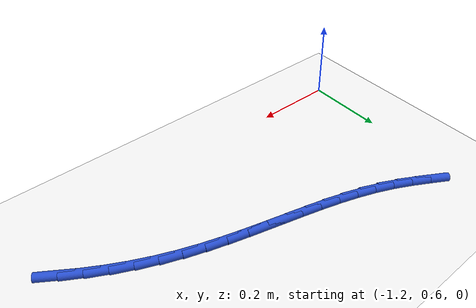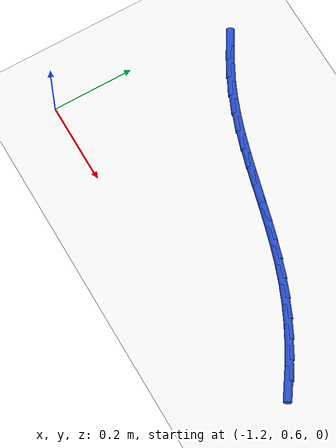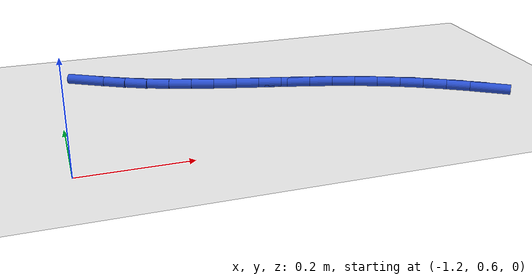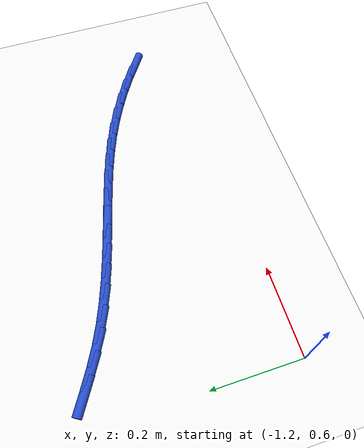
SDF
<sdf version="1.6">
 <world name="default">
  <model name="ground_plane">
   <static>1</static>
   <link name="link">
    <collision name="collision">
     <geometry><plane><normal>0 0 1</normal><size>100 100</size></plane></geometry>
     <surface><friction><ode><mu>100</mu><mu2>50</mu2></ode></friction></surface>
    </collision>
    <visual name="visual">
     <cast_shadows>0</cast_shadows>
     <geometry><plane><normal>0 0 1</normal><size>100 100</size></plane></geometry>
     <material>
      <script><uri>file://media/materials/scripts/gazebo.material</uri><name>Gazebo/WhiteGlow</name></script>
     </material>
    </visual>
   </link>
  </model>
  <model name="line">
   <link name="link_18">
    <pose>-0.3637825632814248 0.7197412563384763 0.01 0 1.57 -0.5878884042394592</pose>
    <collision name="collision">
     <geometry><cylinder><radius>0.01</radius><length>0.08</length></cylinder></geometry>
    </collision>
    <visual name="visual">
     <material>
      <script><name>Gazebo/Blue</name><uri>file://media/materials/scripts/gazebo.material</uri></script>
     </material>
     <geometry><cylinder><radius>0.01</radius><length>0.08</length></cylinder></geometry>
    </visual>
   </link>
   <link name="link_19">
    <pose>-0.40338037573294766 0.7461332666304686 0.01 0 1.57 -0.5402881001267775</pose>
    <collision name="collision">
     <geometry><cylinder><radius>0.01</radius><length>0.08</length></cylinder></geometry>
    </collision>
    <visual name="visual">
     <material>
      <script><name>Gazebo/Blue</name><uri>file://media/materials/scripts/gazebo.material</uri></script>
     </material>
     <geometry><cylinder><radius>0.01</radius><length>0.08</length></cylinder></geometry>
    </visual>
   </link>
   <link name="link_20">
    <pose>-0.44417278772213636 0.7706014246234509 0.01 0 1.57 -0.49308654905106925</pose>
    <collision name="collision">
     <geometry><cylinder><radius>0.01</radius><length>0.08</length></cylinder></geometry>
    </collision>
    <visual name="visual">
     <material>
      <script><name>Gazebo/Blue</name><uri>file://media/materials/scripts/gazebo.material</uri></script>
     </material>
     <geometry><cylinder><radius>0.01</radius><length>0.08</length></cylinder></geometry>
    </visual>
   </link>
   <link name="link_21">
    <pose>-0.48600832528564897 0.7930821430858844 0.01 0 1.57 -0.4460093365763574</pose>
    <collision name="collision">
     <geometry><cylinder><radius>0.01</radius><length>0.08</length></cylinder></geometry>
    </collision>
    <visual name="visual">
     <material>
      <script><name>Gazebo/Blue</name><uri>file://media/materials/scripts/gazebo.material</uri></script>
     </material>
     <geometry><cylinder><radius>0.01</radius><length>0.08</length></cylinder></geometry>
    </visual>
   </link>
   <link name="link_22">
    <pose>-0.5287355144601427 0.8135118347862293 0.01 0 1.57 -0.3987770134314286</pose>
    <collision name="collision">
     <geometry><cylinder><radius>0.01</radius><length>0.08</length></cylinder></geometry>
    </collision>
    <visual name="visual">
     <material>
      <script><name>Gazebo/Blue</name><uri>file://media/materials/scripts/gazebo.material</uri></script>
     </material>
     <geometry><cylinder><radius>0.01</radius><length>0.08</length></cylinder></geometry>
    </visual>
   </link>
   <link name="link_23">
    <pose>-0.5722028812822753 0.8318269124929463 0.01 0 1.57 -0.3520083419137546</pose>
    <collision name="collision">
     <geometry><cylinder><radius>0.01</radius><length>0.08</length></cylinder></geometry>
    </collision>
    <visual name="visual">
     <material>
      <script><name>Gazebo/Blue</name><uri>file://media/materials/scripts/gazebo.material</uri></script>
     </material>
     <geometry><cylinder><radius>0.01</radius><length>0.08</length></cylinder></geometry>
    </visual>
   </link>
   <link name="link_24">
    <pose>-0.6162590524155134 0.8480090134506546 0.01 0 1.57 -0.3121959310141476</pose>
    <collision name="collision">
     <geometry><cylinder><radius>0.01</radius><length>0.08</length></cylinder></geometry>
    </collision>
    <visual name="visual">
     <material>
      <script><name>Gazebo/Blue</name><uri>file://media/materials/scripts/gazebo.material</uri></script>
     </material>
     <geometry><cylinder><radius>0.01</radius><length>0.08</length></cylinder></geometry>
    </visual>
   </link>
   <link name="link_25">
    <pose>-0.6607533883594837 0.8623695812081973 0.01 0 1.57 -0.2824582008621954</pose>
    <collision name="collision">
     <geometry><cylinder><radius>0.01</radius><length>0.08</length></cylinder></geometry>
    </collision>
    <visual name="visual">
     <material>
      <script><name>Gazebo/Blue</name><uri>file://media/materials/scripts/gazebo.material</uri></script>
     </material>
     <geometry><cylinder><radius>0.01</radius><length>0.08</length></cylinder></geometry>
    </visual>
   </link>
   <link name="link_26">
    <pose>-0.7055355747027765 0.8753661633025024 0.01 0 1.57 -0.2629329850610255</pose>
    <collision name="collision">
     <geometry><cylinder><radius>0.01</radius><length>0.08</length></cylinder></geometry>
    </collision>
    <visual name="visual">
     <material>
      <script><name>Gazebo/Blue</name><uri>file://media/materials/scripts/gazebo.material</uri></script>
     </material>
     <geometry><cylinder><radius>0.01</radius><length>0.08</length></cylinder></geometry>
    </visual>
   </link>
   <link name="link_27">
    <pose>-0.7504552984873432 0.8874569604510413 0.01 0 1.57 -0.2536880923601898</pose>
    <collision name="collision">
     <geometry><cylinder><radius>0.01</radius><length>0.08</length></cylinder></geometry>
    </collision>
    <visual name="visual">
     <material>
      <script><name>Gazebo/Blue</name><uri>file://media/materials/scripts/gazebo.material</uri></script>
     </material>
     <geometry><cylinder><radius>0.01</radius><length>0.08</length></cylinder></geometry>
    </visual>
   </link>
   <link name="link_28">
    <pose>-0.7953622467551341 0.8991001733712846 0.01 0 1.57 -0.25479561169535525</pose>
    <collision name="collision">
     <geometry><cylinder><radius>0.01</radius><length>0.08</length></cylinder></geometry>
    </collision>
    <visual name="visual">
     <material>
      <script><name>Gazebo/Blue</name><uri>file://media/materials/scripts/gazebo.material</uri></script>
     </material>
     <geometry><cylinder><radius>0.01</radius><length>0.08</length></cylinder></geometry>
    </visual>
   </link>
   <link name="link_29">
    <pose>-0.8401061065481009 0.9107540027807034 0.01 0 1.57 -0.2663620041468044</pose>
    <collision name="collision">
     <geometry><cylinder><radius>0.01</radius><length>0.08</length></cylinder></geometry>
    </collision>
    <visual name="visual">
     <material>
      <script><name>Gazebo/Blue</name><uri>file://media/materials/scripts/gazebo.material</uri></script>
     </material>
     <geometry><cylinder><radius>0.01</radius><length>0.08</length></cylinder></geometry>
    </visual>
   </link>
   <link name="link_30">
    <pose>-0.8845365649081939 0.9228766493967682 0.01 0 1.57 -0.2885254362625671</pose>
    <collision name="collision">
     <geometry><cylinder><radius>0.01</radius><length>0.08</length></cylinder></geometry>
    </collision>
    <visual name="visual">
     <material>
      <script><name>Gazebo/Blue</name><uri>file://media/materials/scripts/gazebo.material</uri></script>
     </material>
     <geometry><cylinder><radius>0.01</radius><length>0.08</length></cylinder></geometry>
    </visual>
   </link>
   <link name="link_31">
    <pose>-0.9285033088773648 0.9359263139369507 0.01 0 1.57 -0.32141789425308925</pose>
    <collision name="collision">
     <geometry><cylinder><radius>0.01</radius><length>0.08</length></cylinder></geometry>
    </collision>
    <visual name="visual">
     <material>
      <script><name>Gazebo/Blue</name><uri>file://media/materials/scripts/gazebo.material</uri></script>
     </material>
     <geometry><cylinder><radius>0.01</radius><length>0.08</length></cylinder></geometry>
    </visual>
   </link>
   <link name="link_32">
    <pose>-0.9718560254975638 0.9503611971187212 0.01 0 1.57 -0.36508901117233145</pose>
    <collision name="collision">
     <geometry><cylinder><radius>0.01</radius><length>0.08</length></cylinder></geometry>
    </collision>
    <visual name="visual">
     <material>
      <script><name>Gazebo/Blue</name><uri>file://media/materials/scripts/gazebo.material</uri></script>
     </material>
     <geometry><cylinder><radius>0.01</radius><length>0.08</length></cylinder></geometry>
    </visual>
   </link>
   <link name="link_33">
    <pose>-1.0144444018107426 0.9666394996595512 0.01 0 1.57 -0.4193912871517451</pose>
    <collision name="collision">
     <geometry><cylinder><radius>0.01</radius><length>0.08</length></cylinder></geometry>
    </collision>
    <visual name="visual">
     <material>
      <script><name>Gazebo/Blue</name><uri>file://media/materials/scripts/gazebo.material</uri></script>
     </material>
     <geometry><cylinder><radius>0.01</radius><length>0.08</length></cylinder></geometry>
    </visual>
   </link>
   <link name="link_34">
    <pose>-1.0561181248588518 0.9852194222769108 0.01 0 1.57 -0.47927693446181163</pose>
    <collision name="collision">
     <geometry><cylinder><radius>0.01</radius><length>0.08</length></cylinder></geometry>
    </collision>
    <visual name="visual">
     <material>
      <script><name>Gazebo/Blue</name><uri>file://media/materials/scripts/gazebo.material</uri></script>
     </material>
     <geometry><cylinder><radius>0.01</radius><length>0.08</length></cylinder></geometry>
    </visual>
   </link>
   <link name="link_35">
    <pose>-1.096803900731695 1.0063635005245362 0.01 0 1.57 -0.5204897207025851</pose>
    <collision name="collision">
     <geometry><cylinder><radius>0.01</radius><length>0.08</length></cylinder></geometry>
    </collision>
    <visual name="visual">
     <material>
      <script><name>Gazebo/Blue</name><uri>file://media/materials/scripts/gazebo.material</uri></script>
     </material>
     <geometry><cylinder><radius>0.01</radius><length>0.08</length></cylinder></geometry>
    </visual>
   </link>
   <link name="link_36">
    <pose>-1.136832297071943 1.0293082687386517 0.01 0 1.57 -0.535731486797322</pose>
    <collision name="collision">
     <geometry><cylinder><radius>0.01</radius><length>0.08</length></cylinder></geometry>
    </collision>
    <visual name="visual">
     <material>
      <script><name>Gazebo/Blue</name><uri>file://media/materials/scripts/gazebo.material</uri></script>
     </material>
     <geometry><cylinder><radius>0.01</radius><length>0.08</length></cylinder></geometry>
    </visual>
   </link>
  </model>
 </world>
</sdf>
